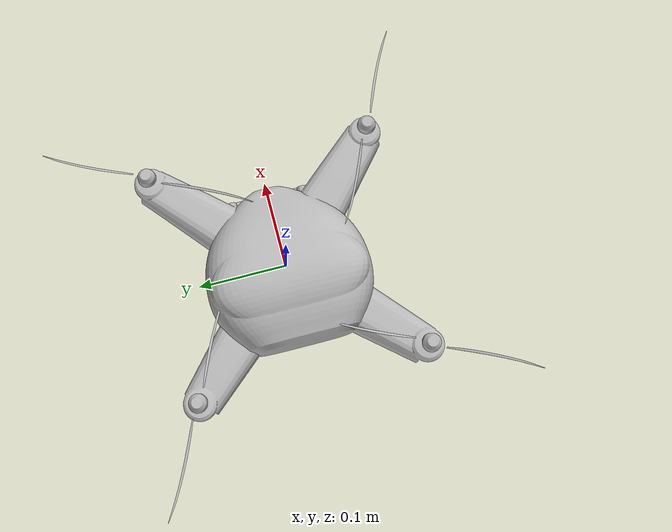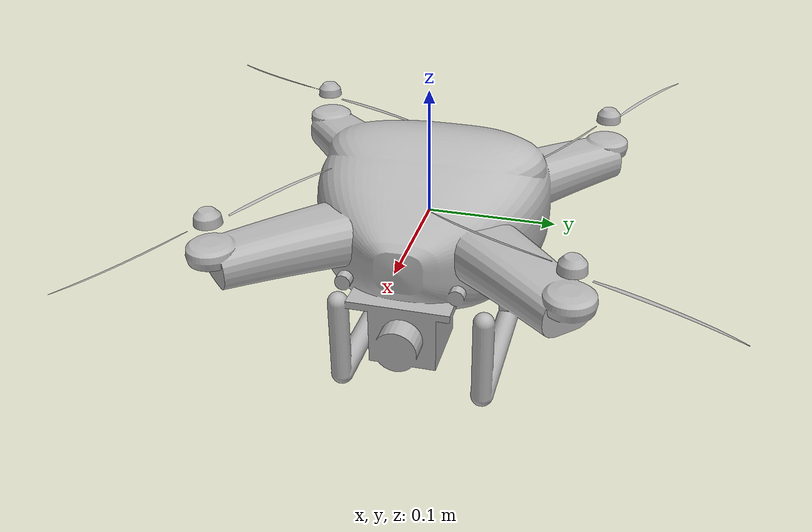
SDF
<?xml version="1.0" ?>
<sdf version="1.9">
  <model name="phantom4">
    <!-- 자동 생성: src/gazebo_export.py -->
    <!-- 메쉬: src/drone_cad.py (trimesh + manifold3d + shapely + scipy) -->
    <!-- 제원 출처: docs/drone_specs_2026.json (공식 DJI + 적대적 검증) -->
    <!-- ⚠ 질량 분포/관성텐서는 **메쉬에서 계산한 추정치**다. DJI 는 공개하지 않는다. -->
    <!--   총질량만 공식 TOW(1380 g)에 맞췄고, 분포는 부위별 밀도가 정했다. -->

    <link name="base_link">
      <pose>0 0 0 0 0 0</pose>
      <inertial>
        <mass>1.376898</mass>
        <pose>-0.001732 -0.000000 -0.003018 0 0 0</pose>
        <inertia>
          <ixx>0.00562556</ixx> <ixy>0.00000002</ixy> <ixz>0.00059810</ixz>
          <iyy>0.00574443</iyy> <iyz>-0.00000005</iyz> <izz>0.00826705</izz>
        </inertia>
      </inertial>
      <collision name="base_collision">
        <geometry><mesh><uri>model://phantom4/meshes/base_link_collision.stl</uri></mesh></geometry>
      </collision>
      <visual name="base_visual">
        <geometry><mesh><uri>model://phantom4/meshes/base_link.stl</uri></mesh></geometry>
      </visual>
    </link>

    <link name="rotor_0">
      <pose>0.126190 0.126190 0.037550 0 0 0.994838</pose>
      <inertial>
        <mass>0.000776</mass>
        <inertia>
          <ixx>0.0000000246</ixx> <ixy>0</ixy> <ixz>0</ixz>
          <iyy>0.0000001451</iyy> <iyz>0</iyz> <izz>0.0000001562</izz>
        </inertia>
      </inertial>
      <collision name="rotor_collision">
        <geometry><mesh><uri>model://phantom4/meshes/rotor_collision.stl</uri></mesh></geometry>
      </collision>
      <visual name="rotor_visual">
        <geometry><mesh><uri>model://phantom4/meshes/rotor.stl</uri></mesh></geometry>
      </visual>
    </link>
    <joint name="rotor_0_joint" type="revolute">
      <parent>base_link</parent>
      <child>rotor_0</child>
      <axis><xyz>0 0 1</xyz><limit><lower>-1e16</lower><upper>1e16</upper></limit></axis>
    </joint>
    <plugin filename="gz-sim-multicopter-motor-model-system" name="gz::sim::systems::MulticopterMotorModel">
      <jointName>rotor_0_joint</jointName>
      <linkName>rotor_0</linkName>
      <turningDirection>ccw</turningDirection>
      <timeConstantUp>0.0125</timeConstantUp>
      <timeConstantDown>0.025</timeConstantDown>
      <maxRotVelocity>890.12</maxRotVelocity>
      <motorConstant>1.019899e-05</motorConstant>
      <momentConstant>0.0144</momentConstant>
      <rotorDragCoefficient>8.064280e-05</rotorDragCoefficient>
      <rollingMomentCoefficient>1.0e-06</rollingMomentCoefficient>
      <rotorVelocitySlowdownSim>10</rotorVelocitySlowdownSim>
      <motorNumber>0</motorNumber>
      <commandSubTopic>command/motor_speed</commandSubTopic>
      <motorType>velocity</motorType>
    </plugin>

    <link name="rotor_1">
      <pose>-0.126190 0.126190 0.037550 0 0 2.565634</pose>
      <inertial>
        <mass>0.000776</mass>
        <inertia>
          <ixx>0.0000000246</ixx> <ixy>0</ixy> <ixz>0</ixz>
          <iyy>0.0000001451</iyy> <iyz>0</iyz> <izz>0.0000001562</izz>
        </inertia>
      </inertial>
      <collision name="rotor_collision">
        <geometry><mesh><uri>model://phantom4/meshes/rotor_collision.stl</uri></mesh></geometry>
      </collision>
      <visual name="rotor_visual">
        <geometry><mesh><uri>model://phantom4/meshes/rotor.stl</uri></mesh></geometry>
      </visual>
    </link>
    <joint name="rotor_1_joint" type="revolute">
      <parent>base_link</parent>
      <child>rotor_1</child>
      <axis><xyz>0 0 1</xyz><limit><lower>-1e16</lower><upper>1e16</upper></limit></axis>
    </joint>
    <plugin filename="gz-sim-multicopter-motor-model-system" name="gz::sim::systems::MulticopterMotorModel">
      <jointName>rotor_1_joint</jointName>
      <linkName>rotor_1</linkName>
      <turningDirection>cw</turningDirection>
      <timeConstantUp>0.0125</timeConstantUp>
      <timeConstantDown>0.025</timeConstantDown>
      <maxRotVelocity>890.12</maxRotVelocity>
      <motorConstant>1.019899e-05</motorConstant>
      <momentConstant>0.0144</momentConstant>
      <rotorDragCoefficient>8.064280e-05</rotorDragCoefficient>
      <rollingMomentCoefficient>1.0e-06</rollingMomentCoefficient>
      <rotorVelocitySlowdownSim>10</rotorVelocitySlowdownSim>
      <motorNumber>1</motorNumber>
      <commandSubTopic>command/motor_speed</commandSubTopic>
      <motorType>velocity</motorType>
    </plugin>

    <link name="rotor_2">
      <pose>-0.126190 -0.126190 0.037550 0 0 4.136430</pose>
      <inertial>
        <mass>0.000776</mass>
        <inertia>
          <ixx>0.0000000246</ixx> <ixy>0</ixy> <ixz>0</ixz>
          <iyy>0.0000001451</iyy> <iyz>0</iyz> <izz>0.0000001562</izz>
        </inertia>
      </inertial>
      <collision name="rotor_collision">
        <geometry><mesh><uri>model://phantom4/meshes/rotor_collision.stl</uri></mesh></geometry>
      </collision>
      <visual name="rotor_visual">
        <geometry><mesh><uri>model://phantom4/meshes/rotor.stl</uri></mesh></geometry>
      </visual>
    </link>
    <joint name="rotor_2_joint" type="revolute">
      <parent>base_link</parent>
      <child>rotor_2</child>
      <axis><xyz>0 0 1</xyz><limit><lower>-1e16</lower><upper>1e16</upper></limit></axis>
    </joint>
    <plugin filename="gz-sim-multicopter-motor-model-system" name="gz::sim::systems::MulticopterMotorModel">
      <jointName>rotor_2_joint</jointName>
      <linkName>rotor_2</linkName>
      <turningDirection>ccw</turningDirection>
      <timeConstantUp>0.0125</timeConstantUp>
      <timeConstantDown>0.025</timeConstantDown>
      <maxRotVelocity>890.12</maxRotVelocity>
      <motorConstant>1.019899e-05</motorConstant>
      <momentConstant>0.0144</momentConstant>
      <rotorDragCoefficient>8.064280e-05</rotorDragCoefficient>
      <rollingMomentCoefficient>1.0e-06</rollingMomentCoefficient>
      <rotorVelocitySlowdownSim>10</rotorVelocitySlowdownSim>
      <motorNumber>2</motorNumber>
      <commandSubTopic>command/motor_speed</commandSubTopic>
      <motorType>velocity</motorType>
    </plugin>

    <link name="rotor_3">
      <pose>0.126190 -0.126190 0.037550 0 0 5.707227</pose>
      <inertial>
        <mass>0.000776</mass>
        <inertia>
          <ixx>0.0000000246</ixx> <ixy>0</ixy> <ixz>0</ixz>
          <iyy>0.0000001451</iyy> <iyz>0</iyz> <izz>0.0000001562</izz>
        </inertia>
      </inertial>
      <collision name="rotor_collision">
        <geometry><mesh><uri>model://phantom4/meshes/rotor_collision.stl</uri></mesh></geometry>
      </collision>
      <visual name="rotor_visual">
        <geometry><mesh><uri>model://phantom4/meshes/rotor.stl</uri></mesh></geometry>
      </visual>
    </link>
    <joint name="rotor_3_joint" type="revolute">
      <parent>base_link</parent>
      <child>rotor_3</child>
      <axis><xyz>0 0 1</xyz><limit><lower>-1e16</lower><upper>1e16</upper></limit></axis>
    </joint>
    <plugin filename="gz-sim-multicopter-motor-model-system" name="gz::sim::systems::MulticopterMotorModel">
      <jointName>rotor_3_joint</jointName>
      <linkName>rotor_3</linkName>
      <turningDirection>cw</turningDirection>
      <timeConstantUp>0.0125</timeConstantUp>
      <timeConstantDown>0.025</timeConstantDown>
      <maxRotVelocity>890.12</maxRotVelocity>
      <motorConstant>1.019899e-05</motorConstant>
      <momentConstant>0.0144</momentConstant>
      <rotorDragCoefficient>8.064280e-05</rotorDragCoefficient>
      <rollingMomentCoefficient>1.0e-06</rollingMomentCoefficient>
      <rotorVelocitySlowdownSim>10</rotorVelocitySlowdownSim>
      <motorNumber>3</motorNumber>
      <commandSubTopic>command/motor_speed</commandSubTopic>
      <motorType>velocity</motorType>
    </plugin>

  </model>
</sdf>
